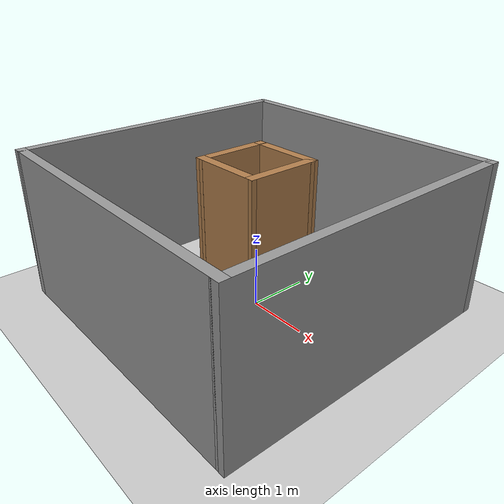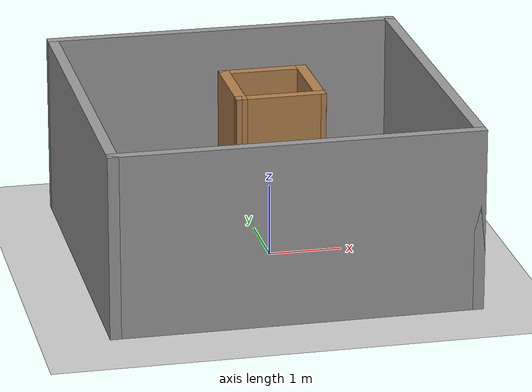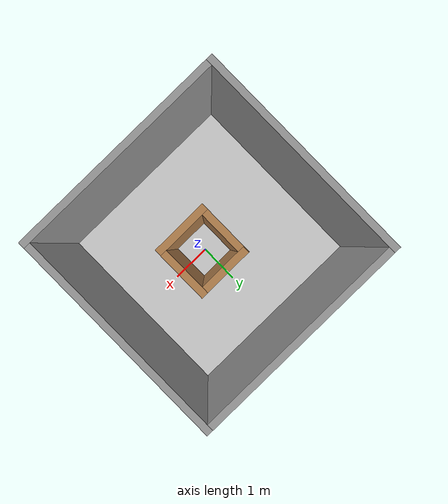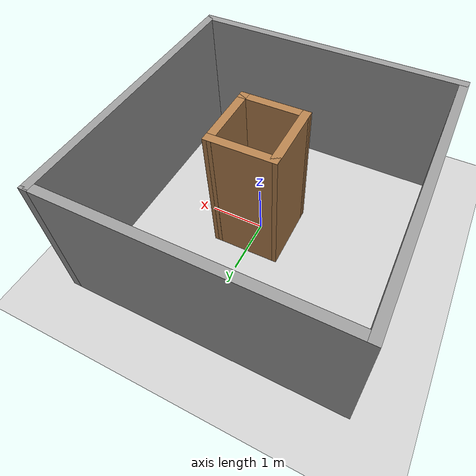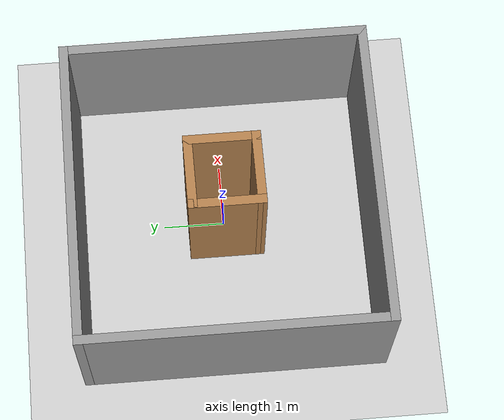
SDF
<sdf version="1.7">
 <world name="default">
  <light name="sun" type="directional">
   <pose>0 0 10 0 -0 0</pose>
   <diffuse>0.8 0.8 0.8 1</diffuse>
   <specular>0.2 0.2 0.2 1</specular>
   <attenuation>
    <range>1000</range>
    <constant>0.9</constant>
    <linear>0.01</linear>
    <quadratic>0.001</quadratic>
   </attenuation>
   <direction>-0.5 0.1 -0.9</direction>
   <spot><inner_angle>0</inner_angle><outer_angle>0</outer_angle><falloff>0</falloff></spot>
  </light>
  <model name="ground_plane">
   <static>1</static>
   <link name="link">
    <collision name="collision">
     <geometry><plane><normal>0 0 1</normal><size>100 100</size></plane></geometry>
     <surface><friction><ode><mu>100</mu><mu2>50</mu2></ode></friction></surface>
    </collision>
    <visual name="visual">
     <cast_shadows>0</cast_shadows>
     <geometry><plane><normal>0 0 1</normal><size>100 100</size></plane></geometry>
     <material>
      <script><uri>file://media/materials/scripts/gazebo.material</uri><name>Gazebo/Grey</name></script>
     </material>
    </visual>
   </link>
  </model>
  <gravity>0 0 -9.8</gravity>
  <magnetic_field>6e-06 2.3e-05 -4.2e-05</magnetic_field>
  <atmosphere type="adiabatic"/>
  <physics type="ode">
   <max_step_size>0.001</max_step_size>
   <real_time_factor>1</real_time_factor>
   <real_time_update_rate>1000</real_time_update_rate>
  </physics>
  <scene><ambient>0.4 0.4 0.4 1</ambient><background>0.7 0.7 0.7 1</background><shadows>1</shadows></scene>
  <spherical_coordinates>
   <surface_model>EARTH_WGS84</surface_model>
   <latitude_deg>0</latitude_deg>
   <longitude_deg>0</longitude_deg>
   <elevation>0</elevation>
   <heading_deg>0</heading_deg>
  </spherical_coordinates>
  <model name="iot_small">
   <pose>-0.153572 0.686148 0 0 -0 0</pose>
   <link name="Wall_0">
    <collision name="Wall_0_Collision">
     <geometry><box><size>5 0.15 2.5</size></box></geometry>
     <pose>0 0 1.25 0 -0 0</pose>
    </collision>
    <visual name="Wall_0_Visual">
     <pose>0 0 1.25 0 -0 0</pose>
     <geometry><box><size>5 0.15 2.5</size></box></geometry>
     <material>
      <script><uri>file://media/materials/scripts/gazebo.material</uri><name>Gazebo/Grey</name></script>
      <ambient>1 1 1 1</ambient>
     </material>
     <meta><layer>0</layer></meta>
    </visual>
    <pose>-2.425 -0.6975 0 0 -0 -1.5708</pose>
   </link>
   <link name="Wall_1">
    <collision name="Wall_1_Collision">
     <geometry><box><size>5 0.15 2.5</size></box></geometry>
     <pose>0 0 1.25 0 -0 0</pose>
    </collision>
    <visual name="Wall_1_Visual">
     <pose>0 0 1.25 0 -0 0</pose>
     <geometry><box><size>5 0.15 2.5</size></box></geometry>
     <material>
      <script><uri>file://media/materials/scripts/gazebo.material</uri><name>Gazebo/Grey</name></script>
      <ambient>1 1 1 1</ambient>
     </material>
     <meta><layer>0</layer></meta>
    </visual>
    <pose>0 -3.1225 0 0 -0 0</pose>
   </link>
   <link name="Wall_3">
    <collision name="Wall_3_Collision">
     <geometry><box><size>5 0.15 2.5</size></box></geometry>
     <pose>0 0 1.25 0 -0 0</pose>
    </collision>
    <visual name="Wall_3_Visual">
     <pose>0 0 1.25 0 -0 0</pose>
     <geometry><box><size>5 0.15 2.5</size></box></geometry>
     <material>
      <script><uri>file://media/materials/scripts/gazebo.material</uri><name>Gazebo/Grey</name></script>
      <ambient>1 1 1 1</ambient>
     </material>
     <meta><layer>0</layer></meta>
    </visual>
    <pose>2.425 -0.6975 0 0 -0 1.5708</pose>
   </link>
   <link name="Wall_4">
    <collision name="Wall_4_Collision">
     <geometry><box><size>5 0.15 2.5</size></box></geometry>
     <pose>0 0 1.25 0 -0 0</pose>
    </collision>
    <visual name="Wall_4_Visual">
     <pose>0 0 1.25 0 -0 0</pose>
     <geometry><box><size>5 0.15 2.5</size></box></geometry>
     <material>
      <script><uri>file://media/materials/scripts/gazebo.material</uri><name>Gazebo/Grey</name></script>
      <ambient>1 1 1 1</ambient>
     </material>
     <meta><layer>0</layer></meta>
    </visual>
    <pose>0 1.7275 0 0 -0 3.14159</pose>
   </link>
   <link name="Wall_6">
    <collision name="Wall_6_Collision">
     <geometry><box><size>1.22885 0.15 2.5</size></box></geometry>
     <pose>0 0 1.25 0 -0 0</pose>
    </collision>
    <visual name="Wall_6_Visual">
     <pose>0 0 1.25 0 -0 0</pose>
     <geometry><box><size>1.22885 0.15 2.5</size></box></geometry>
     <material>
      <script><uri>file://media/materials/scripts/gazebo.material</uri><name>Gazebo/Wood</name></script>
      <ambient>1 1 1 1</ambient>
     </material>
     <meta><layer>0</layer></meta>
    </visual>
    <pose>0.17621 -1.26194 0 0 -0 0.008107</pose>
   </link>
   <link name="Wall_7">
    <collision name="Wall_7_Collision">
     <geometry><box><size>1.25 0.15 2.5</size></box></geometry>
     <pose>0 0 1.25 0 -0 0</pose>
    </collision>
    <visual name="Wall_7_Visual">
     <pose>0 0 1.25 0 -0 0</pose>
     <geometry><box><size>1.25 0.15 2.5</size></box></geometry>
     <material>
      <script><uri>file://media/materials/scripts/gazebo.material</uri><name>Gazebo/Wood</name></script>
      <ambient>1 1 1 1</ambient>
     </material>
     <meta><layer>0</layer></meta>
    </visual>
    <pose>0.715563 -0.707571 0 0 -0 1.5708</pose>
   </link>
   <link name="Wall_8">
    <collision name="Wall_8_Collision">
     <geometry><box><size>1.2201 0.15 2.5</size></box></geometry>
     <pose>0 0 1.25 0 -0 0</pose>
    </collision>
    <visual name="Wall_8_Visual">
     <pose>0 0 1.25 0 -0 0</pose>
     <geometry><box><size>1.2201 0.15 2.5</size></box></geometry>
     <material>
      <script><uri>file://media/materials/scripts/gazebo.material</uri><name>Gazebo/Wood</name></script>
      <ambient>1 1 1 1</ambient>
     </material>
     <meta><layer>0</layer></meta>
    </visual>
    <pose>0.180583 -0.161943 0 0 -0 -3.13342</pose>
   </link>
   <link name="Wall_9">
    <collision name="Wall_9_Collision">
     <geometry><box><size>1.25 0.15 2.5</size></box></geometry>
     <pose>0 0 1.25 0 -0 0</pose>
    </collision>
    <visual name="Wall_9_Visual">
     <pose>0 0 1.25 0 -0 0</pose>
     <geometry><box><size>1.25 0.15 2.5</size></box></geometry>
     <material>
      <script><uri>file://media/materials/scripts/gazebo.material</uri><name>Gazebo/Wood</name></script>
      <ambient>1 1 1 1</ambient>
     </material>
     <meta><layer>0</layer></meta>
    </visual>
    <pose>-0.363142 -0.716316 0 0 -0 -1.5708</pose>
   </link>
   <static>1</static>
  </model>
 </world>
</sdf>
